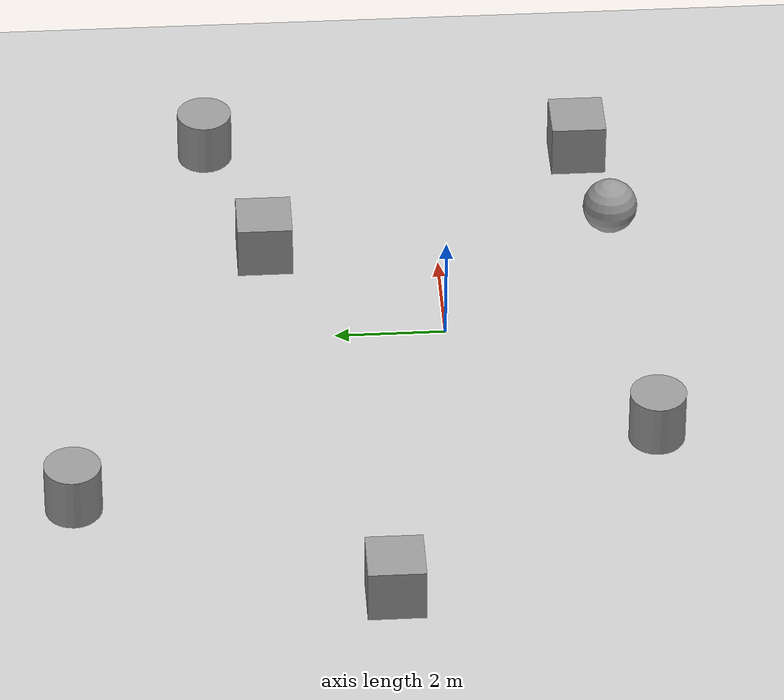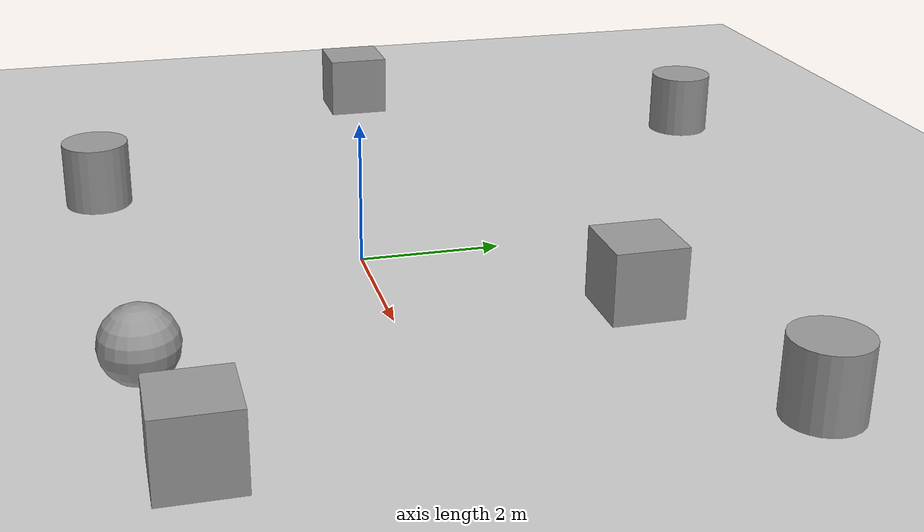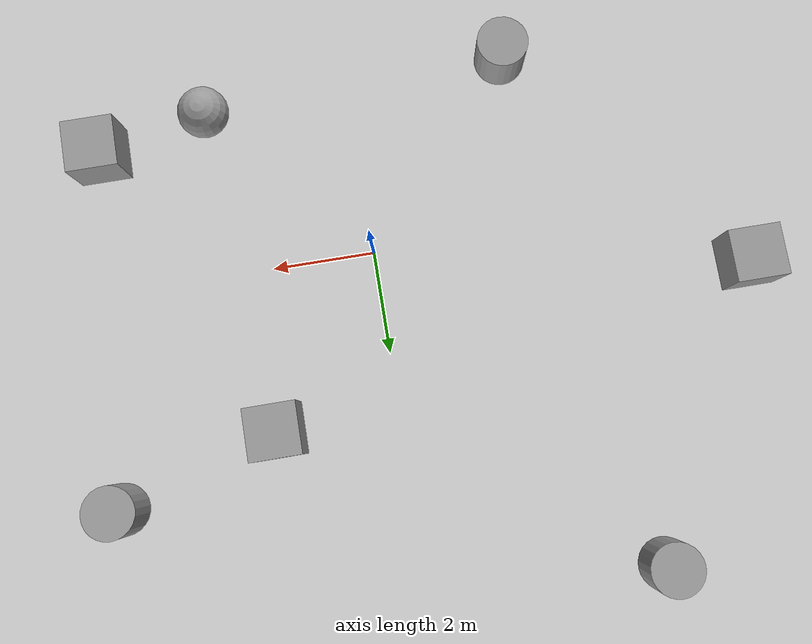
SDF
<sdf version="1.7">
 <world name="default">
  <light name="sun" type="directional">
   <pose>0 0 10 0 -0 0</pose>
   <diffuse>0.8 0.8 0.8 1</diffuse>
   <specular>0.2 0.2 0.2 1</specular>
   <attenuation>
    <range>1000</range>
    <constant>0.9</constant>
    <linear>0.01</linear>
    <quadratic>0.001</quadratic>
   </attenuation>
   <direction>-0.5 0.1 -0.9</direction>
   <spot><inner_angle>0</inner_angle><outer_angle>0</outer_angle><falloff>0</falloff></spot>
  </light>
  <model name="ground_plane">
   <static>1</static>
   <link name="link">
    <collision name="collision">
     <geometry><plane><normal>0 0 1</normal><size>100 100</size></plane></geometry>
     <surface>
      <contact><collide_bitmask>65535</collide_bitmask></contact>
      <friction><ode><mu>100</mu><mu2>50</mu2></ode></friction>
     </surface>
    </collision>
    <visual name="visual">
     <cast_shadows>0</cast_shadows>
     <geometry><plane><normal>0 0 1</normal><size>100 100</size></plane></geometry>
     <material>
      <script><uri>file://media/materials/scripts/gazebo.material</uri><name>Gazebo/Grey</name></script>
     </material>
    </visual>
   </link>
  </model>
  <gravity>0 0 -9.8</gravity>
  <magnetic_field>6e-06 2.3e-05 -4.2e-05</magnetic_field>
  <atmosphere type="adiabatic"/>
  <physics type="ode">
   <max_step_size>0.001</max_step_size>
   <real_time_factor>1</real_time_factor>
   <real_time_update_rate>1000</real_time_update_rate>
  </physics>
  <scene><ambient>0.4 0.4 0.4 1</ambient><background>0.7 0.7 0.7 1</background><shadows>1</shadows></scene>
  <audio><device>default</device></audio>
  <spherical_coordinates>
   <surface_model>EARTH_WGS84</surface_model>
   <latitude_deg>0</latitude_deg>
   <longitude_deg>0</longitude_deg>
   <elevation>0</elevation>
   <heading_deg>0</heading_deg>
  </spherical_coordinates>
  <model name="unit_box">
   <pose>5.02029 -2.79974 0.499995 0 1e-05 0</pose>
   <link name="link">
    <inertial>
     <mass>1</mass>
     <inertia>
      <ixx>0.166667</ixx>
      <ixy>0</ixy>
      <ixz>0</ixz>
      <iyy>0.166667</iyy>
      <iyz>0</iyz>
      <izz>0.166667</izz>
     </inertia>
    </inertial>
    <collision name="collision"><geometry><box><size>1 1 1</size></box></geometry></collision>
    <visual name="visual">
     <geometry><box><size>1 1 1</size></box></geometry>
     <material>
      <script><name>Gazebo/Grey</name><uri>file://media/materials/scripts/gazebo.material</uri></script>
     </material>
    </visual>
   </link>
  </model>
  <model name="unit_cylinder">
   <pose>5.4555 4.12982 0.499998 3e-06 -4e-06 0</pose>
   <link name="link">
    <inertial>
     <mass>1</mass>
     <inertia><ixx>0.145833</ixx><ixy>0</ixy><ixz>0</ixz><iyy>0.145833</iyy><iyz>0</iyz><izz>0.125</izz></inertia>
    </inertial>
    <collision name="collision">
     <geometry><cylinder><radius>0.5</radius><length>1</length></cylinder></geometry>
    </collision>
    <visual name="visual">
     <geometry><cylinder><radius>0.5</radius><length>1</length></cylinder></geometry>
     <material>
      <script><name>Gazebo/Grey</name><uri>file://media/materials/scripts/gazebo.material</uri></script>
     </material>
    </visual>
   </link>
  </model>
  <model name="unit_cylinder_0">
   <pose>-3.12254 -3.5132 0.499998 3e-06 4e-06 -0</pose>
   <link name="link">
    <inertial>
     <mass>1</mass>
     <inertia><ixx>0.145833</ixx><ixy>0</ixy><ixz>0</ixz><iyy>0.145833</iyy><iyz>0</iyz><izz>0.125</izz></inertia>
    </inertial>
    <collision name="collision">
     <geometry><cylinder><radius>0.5</radius><length>1</length></cylinder></geometry>
    </collision>
    <visual name="visual">
     <geometry><cylinder><radius>0.5</radius><length>1</length></cylinder></geometry>
     <material>
      <script><name>Gazebo/Grey</name><uri>file://media/materials/scripts/gazebo.material</uri></script>
     </material>
    </visual>
   </link>
  </model>
  <model name="unit_cylinder_1">
   <pose>-4.46919 6.77849 0.499997 3e-06 4e-06 -0</pose>
   <link name="link">
    <inertial>
     <mass>1</mass>
     <inertia><ixx>0.145833</ixx><ixy>0</ixy><ixz>0</ixz><iyy>0.145833</iyy><iyz>0</iyz><izz>0.125</izz></inertia>
    </inertial>
    <collision name="collision">
     <geometry><cylinder><radius>0.5</radius><length>1</length></cylinder></geometry>
    </collision>
    <visual name="visual">
     <geometry><cylinder><radius>0.5</radius><length>1</length></cylinder></geometry>
     <material>
      <script><name>Gazebo/Grey</name><uri>file://media/materials/scripts/gazebo.material</uri></script>
     </material>
    </visual>
   </link>
  </model>
  <model name="unit_box_0">
   <pose>-7.13495 1.35654 0.499995 0 1e-05 0</pose>
   <link name="link">
    <inertial>
     <mass>1</mass>
     <inertia>
      <ixx>0.166667</ixx>
      <ixy>0</ixy>
      <ixz>0</ixz>
      <iyy>0.166667</iyy>
      <iyz>0</iyz>
      <izz>0.166667</izz>
     </inertia>
    </inertial>
    <collision name="collision"><geometry><box><size>1 1 1</size></box></geometry></collision>
    <visual name="visual">
     <geometry><box><size>1 1 1</size></box></geometry>
     <material>
      <script><name>Gazebo/Grey</name><uri>file://media/materials/scripts/gazebo.material</uri></script>
     </material>
    </visual>
   </link>
  </model>
  <model name="unit_box_1">
   <pose>2.34192 3.15821 0.499995 -1e-05 -0 0</pose>
   <link name="link">
    <inertial>
     <mass>1</mass>
     <inertia>
      <ixx>0.166667</ixx>
      <ixy>0</ixy>
      <ixz>0</ixz>
      <iyy>0.166667</iyy>
      <iyz>0</iyz>
      <izz>0.166667</izz>
     </inertia>
    </inertial>
    <collision name="collision"><geometry><box><size>1 1 1</size></box></geometry></collision>
    <visual name="visual">
     <geometry><box><size>1 1 1</size></box></geometry>
     <material>
      <script><name>Gazebo/Grey</name><uri>file://media/materials/scripts/gazebo.material</uri></script>
     </material>
    </visual>
   </link>
  </model>
  <model name="unit_sphere">
   <pose>2.87016 -3.22906 0.5 0 -0 0</pose>
   <link name="link">
    <inertial>
     <mass>1</mass>
     <inertia><ixx>0.1</ixx><ixy>0</ixy><ixz>0</ixz><iyy>0.1</iyy><iyz>0</iyz><izz>0.1</izz></inertia>
    </inertial>
    <collision name="collision"><geometry><sphere><radius>0.5</radius></sphere></geometry></collision>
    <visual name="visual">
     <geometry><sphere><radius>0.5</radius></sphere></geometry>
     <material>
      <script><name>Gazebo/Grey</name><uri>file://media/materials/scripts/gazebo.material</uri></script>
     </material>
    </visual>
   </link>
  </model>
 </world>
</sdf>
